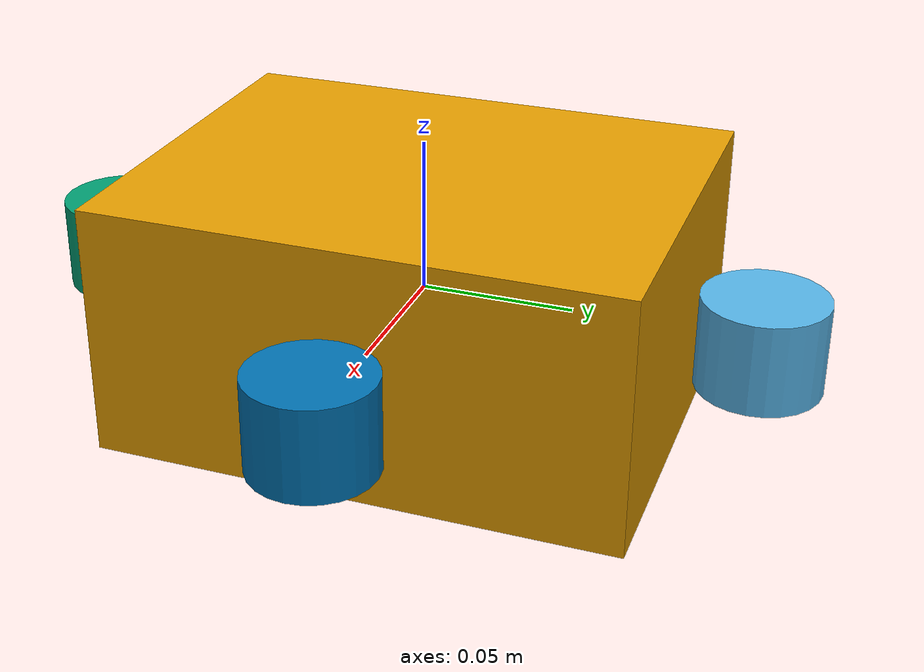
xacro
<?xml version="1.0"?>
<robot name="micro_sub" xmlns:xacro="http://www.ros.org/wiki/xacro">

  <link name="base_link">

    <collision>
      <origin xyz="0 0 0" rpy="0 0 0"/>
      <geometry>
        <box size="0.13335 0.17145 0.08255"/>
      </geometry>
    </collision>

    <visual>
      <origin xyz="0 0 0" rpy="0 0 0"/>
      <geometry>
        <box size="0.13335 0.17145 0.08255"/>
      </geometry>
    </visual>

    <inertial>
      <origin xyz="0 0 0" rpy="0 0 0"/>
      <mass value="1"/>
      <inertia
        ixx="1.0" ixy="0.0" ixz="0.0"
        iyy="1.0" iyz="0.0"
        izz="1.0"/>
    </inertial>

  </link>

  <link name="front_thruster_link">
    <visual>
      <origin xyz="0 0 0" rpy="0 0 0"/>
      <geometry>
        <cylinder radius="0.02" length="0.03"/>
      </geometry>
    </visual>
  </link>

  <link name="back_thruster_link">
    <visual>
      <origin xyz="0 0 0" rpy="0 0 0"/>
      <geometry>
        <cylinder radius="0.02" length="0.03"/>
      </geometry>
    </visual>
  </link>

  <link name="left_thruster_link">
    <visual>
      <origin xyz="0 0 0" rpy="0 0 0"/>
      <geometry>
        <cylinder radius="0.02" length="0.03"/>
      </geometry>
    </visual>
  </link>

  <link name="right_thruster_link">
    <visual>
      <origin xyz="0 0 0" rpy="0 0 0"/>
      <geometry>
        <cylinder radius="0.02" length="0.03"/>
      </geometry>
    </visual>
  </link>

  <joint name="front_thruster_joint" type="revolute">
    <parent link="base_link"/>
    <child link="front_thruster_link"/>
    <limit effort="1000.0" lower="-1.3" upper="1.3" velocity="0.5"/>
    <axis xyz="0 1 0"/>
    <origin xyz="0 0.11 0"/>
  </joint>

  <joint name="back_thruster_joint" type="revolute">
    <parent link="base_link"/>
    <child link="back_thruster_link"/>
    <limit effort="1000.0" lower="-1.3" upper="1.3" velocity="0.5"/>
    <axis xyz="0 1 0"/>
    <origin xyz="0 -0.11 0"/>
  </joint>

  <joint name="left_thruster_joint" type="revolute">
    <parent link="base_link"/>
    <child link="left_thruster_link"/>
    <limit effort="1000.0" lower="-1.3" upper="1.3" velocity="0.5"/>
    <axis xyz="1 0 0"/>
    <origin xyz="-0.09 0 0"/>
  </joint>

  <joint name="right_thruster_joint" type="revolute">
    <parent link="base_link"/>
    <child link="right_thruster_link"/>
    <limit effort="1000.0" lower="-1.3" upper="1.3" velocity="0.5"/>
    <axis xyz="1 0 0"/>
    <origin xyz="0.09 0 0"/>
  </joint>

  <xacro:macro name="thruster_macro" params="namespace thruster_id *origin">
    <link name="thruster_${thruster_id}">

      <inertial>
        <mass value="0.001" />
        <origin xyz="0 0 0" rpy="0 0 0"/>
        <inertia ixx="0.000000017" ixy="0.0" ixz="0.0"
               iyy="0.000000017" iyz="0.0"
               izz="0.000000017" />
      </inertial>
    </link>

    <joint name="thruster_${thruster_id}_joint" type="fixed">
      <xacro:insert_block name="origin" />
      <axis xyz="1 0 0" />
      <parent link="base_link" />
      <child link="thruster_${thruster_id}" />
    </joint>

    <gazebo>
      <plugin name="${namespace}_${thruster_id}_thruster_model" filename="libthruster_ros_plugin.so">
        <linkName>thruster_${thruster_id}</linkName>
        <jointName>thruster_${thruster_id}_joint</jointName>
        <thrusterID>${thruster_id}</thrusterID>
        <gain>5</gain>
        <dynamics>
          <type>FirstOrder</type>
          <timeConstant>0.2</timeConstant>
        </dynamics>
        <conversion>
          <type>Basic</type>
          <rotorConstant>0.00001</rotorConstant>
        </conversion>
      </plugin>
    </gazebo>

    <gazebo reference="thruster_${thruster_id}">
      <selfCollide>false</selfCollide>
    </gazebo>
</xacro:macro>

<xacro:thruster_macro
  namespace=""
  thruster_id="0">
<origin xyz="0 0 0" rpy="0 0 0" />
</xacro:thruster_macro>

</robot>
